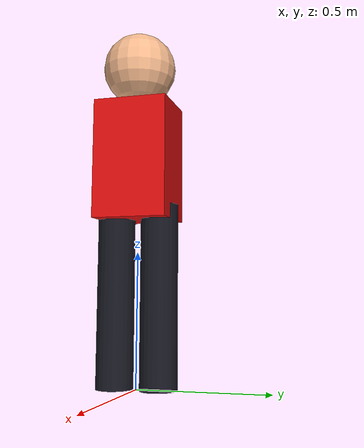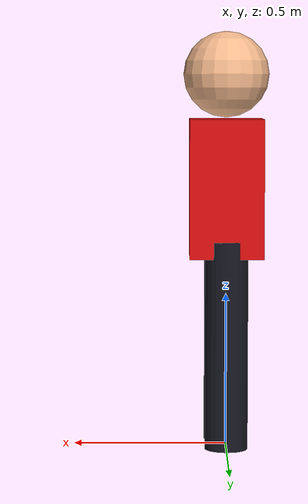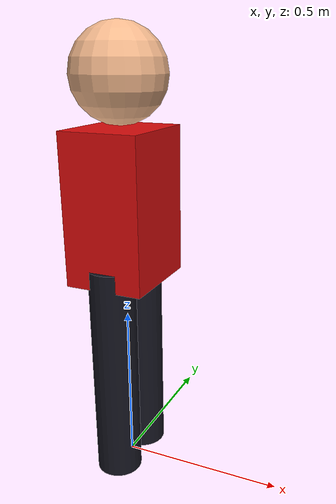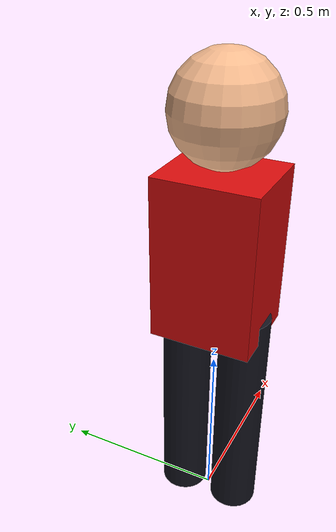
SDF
<?xml version="1.0"?>
<sdf version="1.9">
  <model name="cps_obstacle"><static>true</static><link name="person">
    <collision name="left_leg"><pose>0 0.085 0.34 0 0 0</pose><geometry><cylinder><radius>0.07</radius><length>0.68</length></cylinder></geometry></collision>
    <collision name="right_leg"><pose>0 -0.085 0.34 0 0 0</pose><geometry><cylinder><radius>0.07</radius><length>0.68</length></cylinder></geometry></collision>
    <collision name="torso"><pose>0 0 0.85 0 0 0</pose><geometry><box><size>0.24 0.28 0.45</size></box></geometry></collision>
    <collision name="head"><pose>0 0 1.22 0 0 0</pose><geometry><sphere><radius>0.14</radius></sphere></geometry></collision>
    <visual name="left_leg_visual"><pose>0 0.085 0.34 0 0 0</pose><geometry><cylinder><radius>0.07</radius><length>0.68</length></cylinder></geometry><material><diffuse>0.08 0.08 0.12 1</diffuse></material></visual>
    <visual name="right_leg_visual"><pose>0 -0.085 0.34 0 0 0</pose><geometry><cylinder><radius>0.07</radius><length>0.68</length></cylinder></geometry><material><diffuse>0.08 0.08 0.12 1</diffuse></material></visual>
    <visual name="torso_visual"><pose>0 0 0.85 0 0 0</pose><geometry><box><size>0.24 0.28 0.45</size></box></geometry><material><diffuse>0.85 0.05 0.05 1</diffuse></material></visual>
    <visual name="head_visual"><pose>0 0 1.22 0 0 0</pose><geometry><sphere><radius>0.14</radius></sphere></geometry><material><diffuse>0.95 0.72 0.55 1</diffuse></material></visual>
  </link></model>
</sdf>
